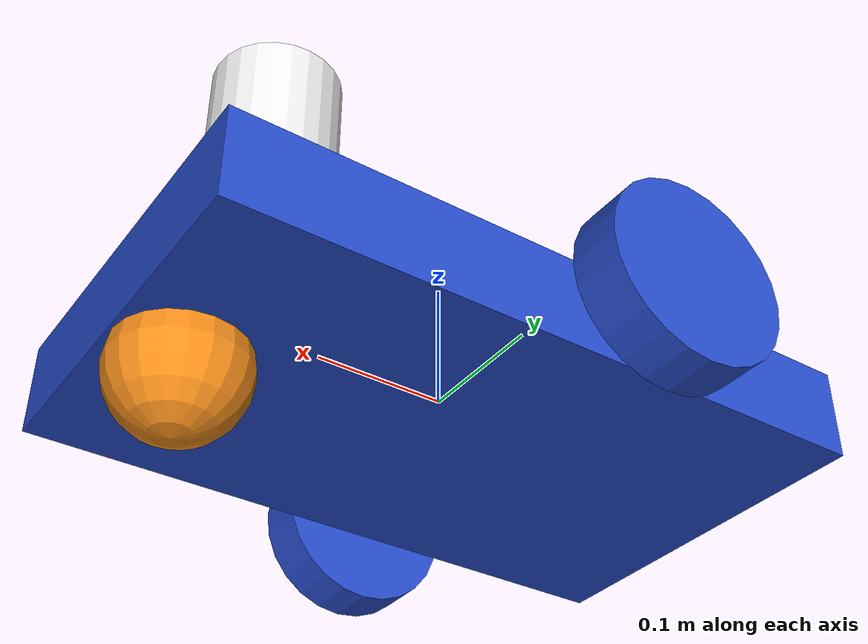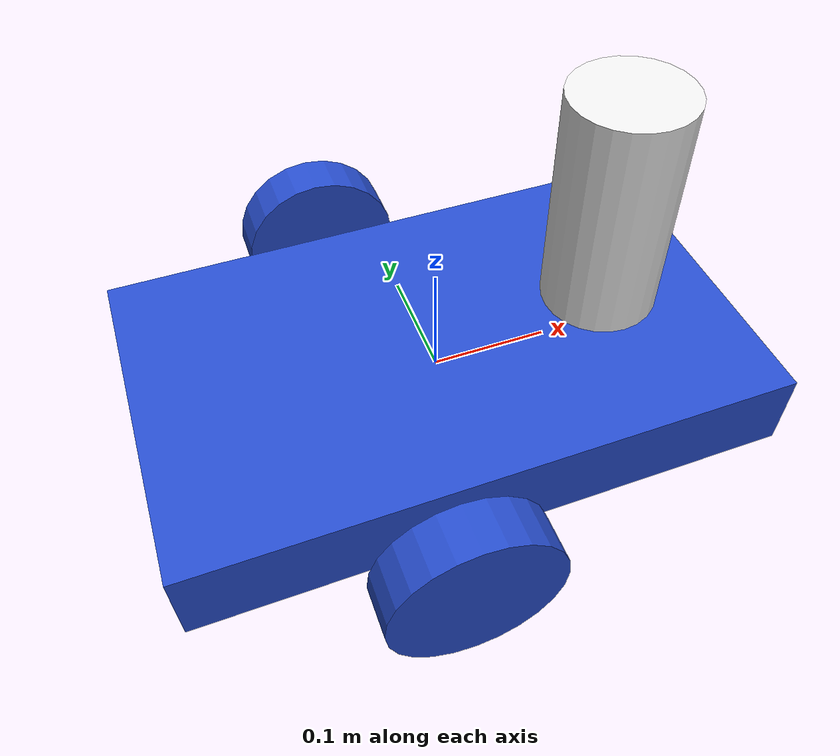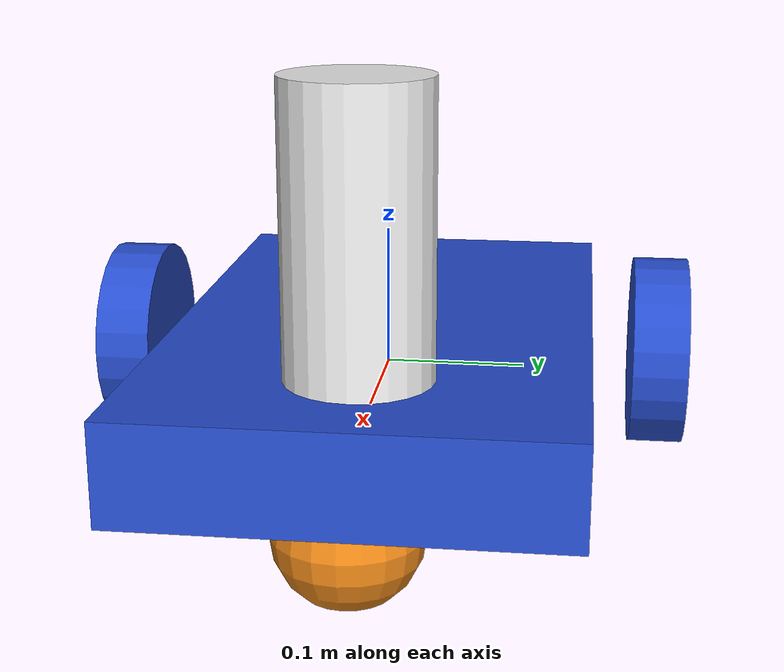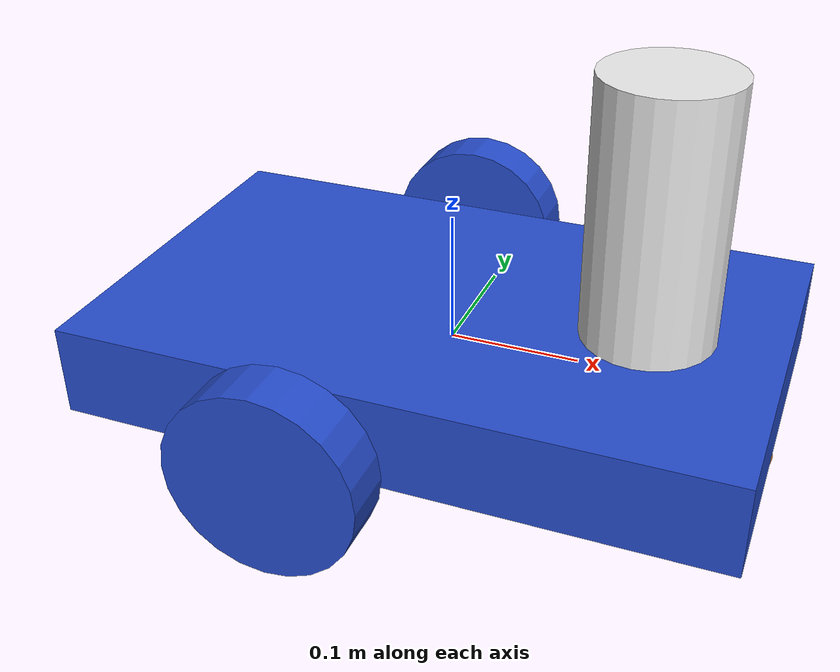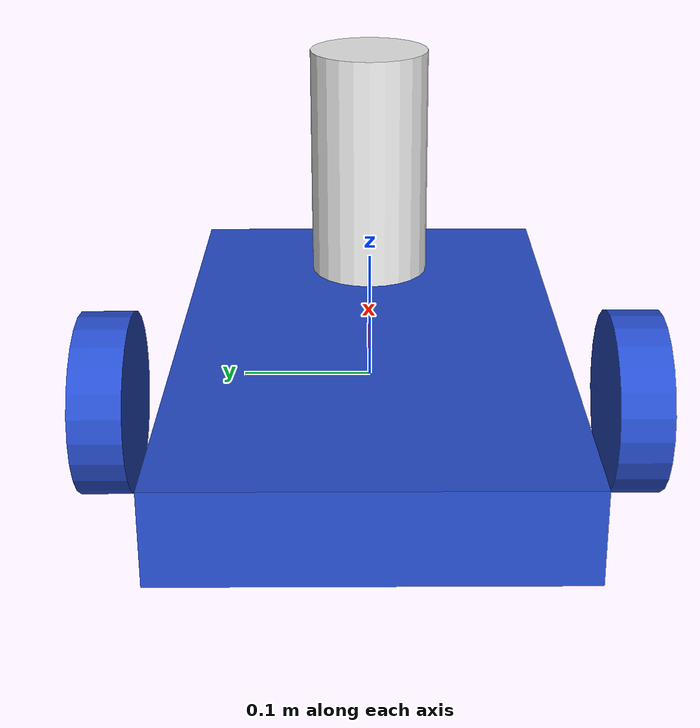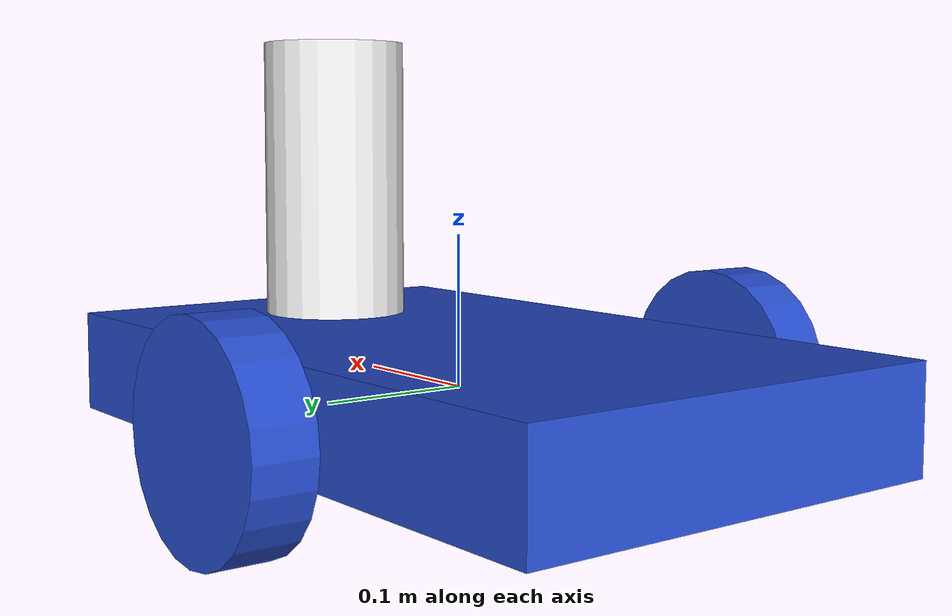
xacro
<?xml version="1.0" ?>

<robot name="m2wr"
    xmlns:xacro="https://www.ros.org/wiki/xacro">

    <xacro:include filename="$(find m2wr_description)/urdf/materials.xacro" />
    <xacro:include filename="$(find m2wr_description)/urdf/gazebo.xacro" />
    <xacro:include filename="$(find m2wr_description)/urdf/macro.xacro" />

    <link name="link_chassis">
        <!-- pose and inertial -->
        <pose>0 0 0.1 0 0 0</pose>

        <inertial>
            <mass value="5"/>
            <origin rpy="0 0 0" xyz="0 0 0.1"/>
            <inertia ixx="0.0395416666667" ixy="0" ixz="0" iyy="0.106208333333" iyz="0" izz="0.106208333333"/>
        </inertial>

        <collision name="collision_chassis">
            <geometry>
                <box size="0.5 0.3 0.07"/>
            </geometry>
        </collision>

        <visual>
            <origin rpy="0 0 0" xyz="0 0 0"/>
            <geometry>
                <box size="0.5 0.3 0.07"/>
            </geometry>
            <material name="blue"/>
        </visual>

        <!-- caster front -->
        <collision name="caster_front_collision">
            <origin rpy=" 0 0 0" xyz="0.35 0 -0.05"/>
            <geometry>
                <sphere radius="0.05"/>
            </geometry>
            <surface>
                <friction>
                    <ode>
                        <mu>0</mu>
                        <mu2>0</mu2>
                        <slip1>1.0</slip1>
                        <slip2>1.0</slip2>
                    </ode>
                </friction>
            </surface>
        </collision>
        <visual name="caster_front_visual">
            <origin rpy=" 0 0 0" xyz="0.2 0 -0.05"/>
            <geometry>
                <sphere radius="0.05"/>
            </geometry>
        </visual>
    </link>

    <!-- Create wheel right -->

    <xacro:link_wheel name="link_right_wheel" />
    <xacro:joint_wheel name="joint_right_wheel" child="link_right_wheel" origin_xyz="-0.05 -0.20 0" />

    <!-- Left Wheel link -->

    <xacro:link_wheel name="link_left_wheel" />
    <xacro:joint_wheel name="joint_left_wheel" child="link_left_wheel" origin_xyz="-0.05 0.20 0" />

    <link name="sensor_laser">
        <inertial>
            <origin xyz="0 0 0" rpy="0 0 0" />
            <mass value="1" />
            <xacro:cylinder_inertia mass="1" r="0.05" l="0.1" />
        </inertial>

        <visual>
            <origin xyz="0 0 0" rpy="0 0 0" />
            <geometry>
                <cylinder radius="0.05" length="0.2"/>
            </geometry>
            <material name="white" />
        </visual>

        <collision>
            <origin xyz="0 0 0" rpy="0 0 0"/>
            <geometry>
                <cylinder radius="0.05" length="0.1"/>
            </geometry>
        </collision>
    </link>

    <joint name="joint_sensor_laser" type="fixed">
        <origin xyz="0.15 0 0.13" rpy="0 0 0"/>
        <parent link="link_chassis"/>
        <child link="sensor_laser"/>
    </joint>

</robot>

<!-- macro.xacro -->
<!--
  we will use macros, which are like functions, to reduce the remaining code in m2wr.xacro file.
-->
<robot xmlns:xacro="http://www.ros.org/wiki/xacro">
    <xacro:macro name="link_wheel" params="name">
        <link name="${name}">
            <inertial>
                <mass value="0.2"/>
                <origin rpy="0 1.5707 1.5707" xyz="0 0 0"/>
                <inertia ixx="0.000526666666667" ixy="0" ixz="0" iyy="0.000526666666667" iyz="0" izz="0.001"/>
            </inertial>
            <collision name="link_right_wheel_collision">
                <origin rpy="0 1.5707 1.5707" xyz="0 0 0"/>
                <geometry>
                    <cylinder length="0.04" radius="0.07"/>
                </geometry>
            </collision>
            <visual name="${name}_visual">
                <origin rpy="0 1.5707 1.5707" xyz="0 0 0"/>
                <geometry>
                    <cylinder length="0.04" radius="0.07"/>
                </geometry>
            </visual>
        </link>
    </xacro:macro>

    <!--
      The second macro accepts three parameters name, child and origin_xyz and it creates a joint link.
    -->
    <xacro:macro name="joint_wheel" params="name child origin_xyz">
        <joint name="${name}" type="continuous">
            <origin rpy="0 0 0" xyz="${origin_xyz}"/>
            <child link="${child}"/>
            <parent link="link_chassis"/>
            <axis rpy="0 0 0" xyz="0 1 0"/>
            <limit effort="10000" velocity="1000"/>
            <joint_properties damping="1.0" friction="1.0"/>
        </joint>
    </xacro:macro>

    <!--
      new macro for controlling the moment of inertia of the sensor cilinder
    -->
    <xacro:macro name="cylinder_inertia" params="mass r l">
        <inertia ixx="${mass*(3*r*r+l*l)/12}" ixy = "0" ixz = "0" iyy="${mass*(3*r*r+l*l)/12}" iyz = "0" izz="${mass*(r*r)/2}" />
    </xacro:macro>

</robot>
